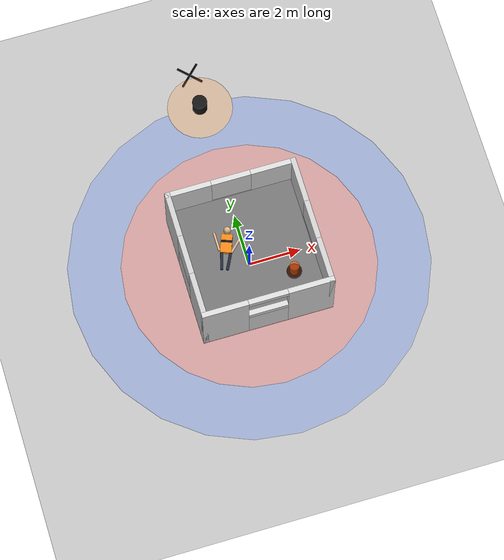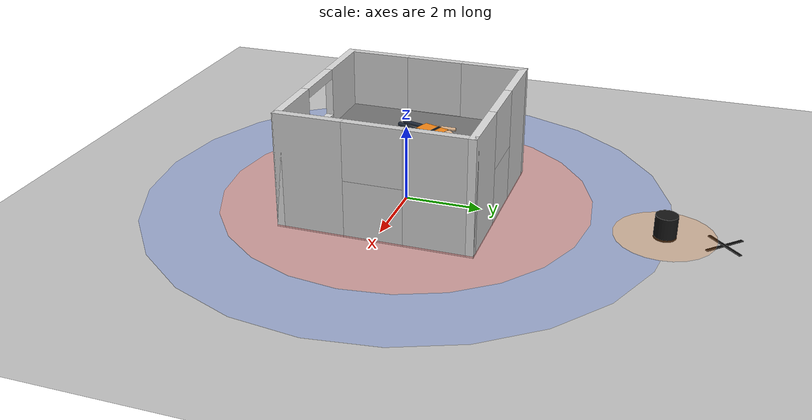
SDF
<?xml version="1.0" ?>
<sdf version="1.6">
  <world name="surveillance_building">

    <!-- ── Physics ─────────────────────────────────────────────── -->
    <physics name="default" default="true" type="ode">
      <max_step_size>0.002</max_step_size>
      <real_time_factor>1.0</real_time_factor>
      <real_time_update_rate>500</real_time_update_rate>
    </physics>

    <plugin
      filename="gz-sim-physics-system"
      name="gz::sim::systems::Physics">
    </plugin>

    <plugin
      filename="gz-sim-sensors-system"
      name="gz::sim::systems::Sensors">
    </plugin>

    <plugin
      filename="gz-sim-scene-broadcaster-system"
      name="gz::sim::systems::SceneBroadcaster">
    </plugin>

    <plugin
      filename="gz-sim-user-commands-system"
      name="gz::sim::systems::UserCommands">
    </plugin>

    <!-- ── Scene ──────────────────────────────────────────────── -->
    <scene>
      <ambient>0.6 0.6 0.6 1</ambient>
      <background>0.7 0.8 0.9 1</background>
      <shadows>true</shadows>
    </scene>

    <!-- ── Sun ────────────────────────────────────────────────── -->
    <light name="sun" type="directional">
      <cast_shadows>true</cast_shadows>
      <pose>0 0 10 0 0 0</pose>
      <diffuse>0.9 0.9 0.9 1</diffuse>
      <specular>0.1 0.1 0.1 1</specular>
      <direction>-0.5 0.1 -0.9</direction>
    </light>

    <!-- ── Ground Plane ───────────────────────────────────────── -->
    <model name="ground_plane">
      <static>true</static>
      <link name="link">
        <collision name="collision">
          <geometry>
            <plane>
              <normal>0 0 1</normal>
              <size>50 50</size>
            </plane>
          </geometry>
        </collision>
        <visual name="visual">
          <cast_shadows>false</cast_shadows>
          <geometry>
            <plane>
              <normal>0 0 1</normal>
              <size>50 50</size>
            </plane>
          </geometry>
          <material>
            <ambient>0.75 0.75 0.75 1</ambient>
            <diffuse>0.75 0.75 0.75 1</diffuse>
          </material>
        </visual>
      </link>
    </model>

    <model name="surveillance_building">
      <static>true</static>
      <pose>0 0 0 0 0 0</pose>

      <link name="floor">
        <pose>0 0 1.45 0 0 0</pose>
        <collision name="c">
          <geometry><box><size>4.55 4.55 0.1</size></box></geometry>
        </collision>
        <visual name="v">
          <geometry><box><size>4.55 4.55 0.1</size></box></geometry>
          <material>
            <ambient>0.45 0.45 0.45 1</ambient>
            <diffuse>0.45 0.45 0.45 1</diffuse>
          </material>
        </visual>
      </link>

      <!-- ══ NORTH WALL  (y = +2.4, outer face at y = +2.5) ══
           Runs along X-axis.
           ─────────────────────────────────────────────────────── -->

      <!-- Left column  x ∈ [−2.50, −0.75]  full height -->
      <link name="n_col_l">
        <pose>-1.625 2.4 1.5 0 0 0</pose>
        <collision name="c"><geometry><box><size>1.75 0.2 3.0</size></box></geometry></collision>
        <visual name="v">
          <geometry><box><size>1.75 0.2 3.0</size></box></geometry>
          <material><ambient>0.85 0.85 0.85 1</ambient><diffuse>0.85 0.85 0.85 1</diffuse></material>
        </visual>
      </link>

      <!-- Right column  x ∈ [+0.75, +2.50]  full height -->
      <link name="n_col_r">
        <pose>1.625 2.4 1.5 0 0 0</pose>
        <collision name="c"><geometry><box><size>1.75 0.2 3.0</size></box></geometry></collision>
        <visual name="v">
          <geometry><box><size>1.75 0.2 3.0</size></box></geometry>
          <material><ambient>0.85 0.85 0.85 1</ambient><diffuse>0.85 0.85 0.85 1</diffuse></material>
        </visual>
      </link>

      <!-- Solid lower wall and blocked upper window centre panel -->
      <link name="n_bot">
        <pose>0 2.4 0.75 0 0 0</pose>
        <collision name="c"><geometry><box><size>1.5 0.2 1.5</size></box></geometry></collision>
        <visual name="v">
          <geometry><box><size>1.5 0.2 1.5</size></box></geometry>
          <material><ambient>0.85 0.85 0.85 1</ambient><diffuse>0.85 0.85 0.85 1</diffuse></material>
        </visual>
      </link>

      <link name="n_top">
        <pose>0 2.4 2.25 0 0 0</pose>
        <collision name="c"><geometry><box><size>1.5 0.2 1.5</size></box></geometry></collision>
        <visual name="v">
          <geometry><box><size>1.5 0.2 1.5</size></box></geometry>
          <material><ambient>0.85 0.85 0.85 1</ambient><diffuse>0.85 0.85 0.85 1</diffuse></material>
        </visual>
      </link>

      <!-- ══ SOUTH WALL  (y = −2.4, outer face at y = −2.5) ══ -->

      <link name="s_col_l">
        <pose>-1.625 -2.4 1.5 0 0 0</pose>
        <collision name="c"><geometry><box><size>1.75 0.2 3.0</size></box></geometry></collision>
        <visual name="v">
          <geometry><box><size>1.75 0.2 3.0</size></box></geometry>
          <material><ambient>0.85 0.85 0.85 1</ambient><diffuse>0.85 0.85 0.85 1</diffuse></material>
        </visual>
      </link>

      <link name="s_col_r">
        <pose>1.625 -2.4 1.5 0 0 0</pose>
        <collision name="c"><geometry><box><size>1.75 0.2 3.0</size></box></geometry></collision>
        <visual name="v">
          <geometry><box><size>1.75 0.2 3.0</size></box></geometry>
          <material><ambient>0.85 0.85 0.85 1</ambient><diffuse>0.85 0.85 0.85 1</diffuse></material>
        </visual>
      </link>

      <link name="s_bot">
        <pose>0 -2.4 0.75 0 0 0</pose>
        <collision name="c"><geometry><box><size>1.5 0.2 1.5</size></box></geometry></collision>
        <visual name="v">
          <geometry><box><size>1.5 0.2 1.5</size></box></geometry>
          <material><ambient>0.85 0.85 0.85 1</ambient><diffuse>0.85 0.85 0.85 1</diffuse></material>
        </visual>
      </link>

      <link name="s_upper_sill">
        <pose>0 -2.4 1.625 0 0 0</pose>
        <collision name="c"><geometry><box><size>1.5 0.2 0.25</size></box></geometry></collision>
        <visual name="v">
          <geometry><box><size>1.5 0.2 0.25</size></box></geometry>
          <material><ambient>0.85 0.85 0.85 1</ambient><diffuse>0.85 0.85 0.85 1</diffuse></material>
        </visual>
      </link>

      <link name="s_top">
        <pose>0 -2.4 2.875 0 0 0</pose>
        <collision name="c"><geometry><box><size>1.5 0.2 0.25</size></box></geometry></collision>
        <visual name="v">
          <geometry><box><size>1.5 0.2 0.25</size></box></geometry>
          <material><ambient>0.85 0.85 0.85 1</ambient><diffuse>0.85 0.85 0.85 1</diffuse></material>
        </visual>
      </link>

      <!-- ══ EAST WALL  (x = +2.4, outer face at x = +2.5) ══
           Runs along Y-axis.  Size swaps x↔y vs N/S walls.
           ─────────────────────────────────────────────────────── -->

      <link name="e_col_l">
        <pose>2.4 -1.625 1.5 0 0 0</pose>
        <collision name="c"><geometry><box><size>0.2 1.75 3.0</size></box></geometry></collision>
        <visual name="v">
          <geometry><box><size>0.2 1.75 3.0</size></box></geometry>
          <material><ambient>0.80 0.80 0.80 1</ambient><diffuse>0.80 0.80 0.80 1</diffuse></material>
        </visual>
      </link>

      <link name="e_col_r">
        <pose>2.4 1.625 1.5 0 0 0</pose>
        <collision name="c"><geometry><box><size>0.2 1.75 3.0</size></box></geometry></collision>
        <visual name="v">
          <geometry><box><size>0.2 1.75 3.0</size></box></geometry>
          <material><ambient>0.80 0.80 0.80 1</ambient><diffuse>0.80 0.80 0.80 1</diffuse></material>
        </visual>
      </link>

      <link name="e_bot">
        <pose>2.4 0 0.75 0 0 0</pose>
        <collision name="c"><geometry><box><size>0.2 1.5 1.5</size></box></geometry></collision>
        <visual name="v">
          <geometry><box><size>0.2 1.5 1.5</size></box></geometry>
          <material><ambient>0.80 0.80 0.80 1</ambient><diffuse>0.80 0.80 0.80 1</diffuse></material>
        </visual>
      </link>

      <link name="e_top">
        <pose>2.4 0 2.25 0 0 0</pose>
        <collision name="c"><geometry><box><size>0.2 1.5 1.5</size></box></geometry></collision>
        <visual name="v">
          <geometry><box><size>0.2 1.5 1.5</size></box></geometry>
          <material><ambient>0.80 0.80 0.80 1</ambient><diffuse>0.80 0.80 0.80 1</diffuse></material>
        </visual>
      </link>

      <!-- ══ WEST WALL  (x = −2.4, outer face at x = −2.5) ══ -->

      <link name="w_col_l">
        <pose>-2.4 -1.625 1.5 0 0 0</pose>
        <collision name="c"><geometry><box><size>0.2 1.75 3.0</size></box></geometry></collision>
        <visual name="v">
          <geometry><box><size>0.2 1.75 3.0</size></box></geometry>
          <material><ambient>0.80 0.80 0.80 1</ambient><diffuse>0.80 0.80 0.80 1</diffuse></material>
        </visual>
      </link>

      <link name="w_col_r">
        <pose>-2.4 1.625 1.5 0 0 0</pose>
        <collision name="c"><geometry><box><size>0.2 1.75 3.0</size></box></geometry></collision>
        <visual name="v">
          <geometry><box><size>0.2 1.75 3.0</size></box></geometry>
          <material><ambient>0.80 0.80 0.80 1</ambient><diffuse>0.80 0.80 0.80 1</diffuse></material>
        </visual>
      </link>

      <link name="w_bot">
        <pose>-2.4 0 0.75 0 0 0</pose>
        <collision name="c"><geometry><box><size>0.2 1.5 1.5</size></box></geometry></collision>
        <visual name="v">
          <geometry><box><size>0.2 1.5 1.5</size></box></geometry>
          <material><ambient>0.80 0.80 0.80 1</ambient><diffuse>0.80 0.80 0.80 1</diffuse></material>
        </visual>
      </link>

      <link name="w_top">
        <pose>-2.4 0 2.25 0 0 0</pose>
        <collision name="c"><geometry><box><size>0.2 1.5 1.5</size></box></geometry></collision>
        <visual name="v">
          <geometry><box><size>0.2 1.5 1.5</size></box></geometry>
          <material><ambient>0.80 0.80 0.80 1</ambient><diffuse>0.80 0.80 0.80 1</diffuse></material>
        </visual>
      </link>

    </model>
    <!-- end surveillance_building -->

    <model name="ergodic_area_visual">
      <static>true</static>
      <pose>0 0 0.012 0 0 0</pose>
      <link name="visual_only">
        <visual name="coverage_disk">
          <cast_shadows>false</cast_shadows>
          <geometry>
            <cylinder>
              <radius>6.8</radius>
              <length>0.015</length>
            </cylinder>
          </geometry>
          <material>
            <ambient>0.02 0.30 1.00 0.12</ambient>
            <diffuse>0.02 0.30 1.00 0.12</diffuse>
            <emissive>0.00 0.06 0.18 0.08</emissive>
          </material>
          <transparency>0.88</transparency>
        </visual>
      </link>
    </model>

    <!-- Small path obstacle with its own local CBF circle. -->
    <model name="path_obstacle">
      <static>true</static>
      <pose>0 6.6 0.30 0 0 0</pose>
      <link name="body">
        <collision name="c">
          <geometry>
            <cylinder>
              <radius>0.28</radius>
              <length>0.60</length>
            </cylinder>
          </geometry>
        </collision>
        <visual name="v">
          <geometry>
            <cylinder>
              <radius>0.28</radius>
              <length>0.60</length>
            </cylinder>
          </geometry>
          <material>
            <ambient>0.08 0.08 0.08 1</ambient>
            <diffuse>0.08 0.08 0.08 1</diffuse>
          </material>
        </visual>
      </link>
    </model>

    <model name="path_obstacle_cbf_visual">
      <static>true</static>
      <pose>0 6.6 0.04 0 0 0</pose>
      <link name="visual_only">
        <visual name="obstacle_cbf_disk">
          <cast_shadows>false</cast_shadows>
          <geometry>
            <cylinder>
              <radius>1.25</radius>
              <length>0.02</length>
            </cylinder>
          </geometry>
          <material>
            <ambient>1.00 0.45 0.00 0.18</ambient>
            <diffuse>1.00 0.45 0.00 0.18</diffuse>
            <emissive>0.20 0.06 0.00 0.10</emissive>
          </material>
          <transparency>0.82</transparency>
        </visual>
      </link>
    </model>

    <!-- Default drone home/start marker at launch pose (x=0, y=8). -->
    <model name="home_start_marker">
      <static>true</static>
      <pose>0 8 0.018 0 0 0</pose>
      <link name="x_marker">
        <visual name="slash_a">
          <cast_shadows>false</cast_shadows>
          <pose>0 0 0 0 0 0.7854</pose>
          <geometry><box><size>1.1 0.08 0.025</size></box></geometry>
          <material>
            <ambient>0.0 0.0 0.0 1</ambient>
            <diffuse>0.0 0.0 0.0 1</diffuse>
          </material>
        </visual>
        <visual name="slash_b">
          <cast_shadows>false</cast_shadows>
          <pose>0 0 0 0 0 -0.7854</pose>
          <geometry><box><size>1.1 0.08 0.025</size></box></geometry>
          <material>
            <ambient>0.0 0.0 0.0 1</ambient>
            <diffuse>0.0 0.0 0.0 1</diffuse>
          </material>
        </visual>
      </link>
    </model>

    <model name="cbf_field_visual">
      <static>true</static>
      <pose>0 0 0.03 0 0 0</pose>
      <link name="visual_only">
        <visual name="repulsion_disk">
          <cast_shadows>false</cast_shadows>
          <geometry>
            <cylinder>
              <radius>4.8</radius>
              <length>0.025</length>
            </cylinder>
          </geometry>
          <material>
            <ambient>1.00 0.06 0.02 0.16</ambient>
            <diffuse>1.00 0.06 0.02 0.16</diffuse>
            <emissive>0.20 0.01 0.00 0.10</emissive>
          </material>
          <transparency>0.84</transparency>
        </visual>
      </link>
    </model>

    <model name="rescue_mannequin">
      <static>true</static>
      <pose>-0.75 0.45 1.5 0 0 -0.35</pose>

      <link name="body">
        <pose>0 0 0 0 0 0</pose>

        <visual name="torso">
          <pose>0 0 0.13 0 0 0</pose>
          <geometry><box><size>0.42 0.72 0.16</size></box></geometry>
          <material>
            <ambient>0.95 0.52 0.08 1</ambient>
            <diffuse>0.95 0.52 0.08 1</diffuse>
            <specular>0.12 0.12 0.12 1</specular>
          </material>
        </visual>
        <collision name="torso_c">
          <pose>0 0 0.13 0 0 0</pose>
          <geometry><box><size>0.42 0.72 0.16</size></box></geometry>
        </collision>

        <visual name="chest_marker">
          <pose>0 0.08 0.215 0 0 0</pose>
          <geometry><box><size>0.44 0.09 0.012</size></box></geometry>
          <material>
            <ambient>0.05 0.05 0.05 1</ambient>
            <diffuse>0.05 0.05 0.05 1</diffuse>
          </material>
        </visual>

        <visual name="head">
          <pose>0 0.52 0.15 0 0 0</pose>
          <geometry><sphere><radius>0.14</radius></sphere></geometry>
          <material>
            <ambient>0.86 0.70 0.55 1</ambient>
            <diffuse>0.86 0.70 0.55 1</diffuse>
          </material>
        </visual>
        <collision name="head_c">
          <pose>0 0.52 0.15 0 0 0</pose>
          <geometry><sphere><radius>0.14</radius></sphere></geometry>
        </collision>

        <visual name="left_arm">
          <pose>-0.36 0.06 0.13 1.5708 0 0.35</pose>
          <geometry><cylinder><radius>0.045</radius><length>0.72</length></cylinder></geometry>
          <material><ambient>0.86 0.70 0.55 1</ambient><diffuse>0.86 0.70 0.55 1</diffuse></material>
        </visual>
        <visual name="right_arm">
          <pose>0.36 -0.02 0.13 1.5708 0 -0.45</pose>
          <geometry><cylinder><radius>0.045</radius><length>0.72</length></cylinder></geometry>
          <material><ambient>0.86 0.70 0.55 1</ambient><diffuse>0.86 0.70 0.55 1</diffuse></material>
        </visual>

        <visual name="left_leg">
          <pose>-0.13 -0.62 0.12 1.5708 0 0.08</pose>
          <geometry><cylinder><radius>0.055</radius><length>0.78</length></cylinder></geometry>
          <material><ambient>0.12 0.16 0.22 1</ambient><diffuse>0.12 0.16 0.22 1</diffuse></material>
        </visual>
        <visual name="right_leg">
          <pose>0.15 -0.62 0.12 1.5708 0 -0.12</pose>
          <geometry><cylinder><radius>0.055</radius><length>0.78</length></cylinder></geometry>
          <material><ambient>0.12 0.16 0.22 1</ambient><diffuse>0.12 0.16 0.22 1</diffuse></material>
        </visual>
      </link>
    </model>

    <model name="fire_smoke_source">
      <static>true</static>
      <pose>1.35 -1.25 1.5 0 0 0</pose>

      <link name="source">
        <visual name="ember_base">
          <pose>0 0 0.035 0 0 0</pose>
          <geometry><cylinder><radius>0.28</radius><length>0.07</length></cylinder></geometry>
          <material>
            <ambient>0.18 0.06 0.02 1</ambient>
            <diffuse>0.18 0.06 0.02 1</diffuse>
            <emissive>0.85 0.22 0.03 1</emissive>
          </material>
        </visual>

        <visual name="flame_core">
          <pose>0 0 0.36 0 0 0</pose>
          <geometry><cylinder><radius>0.18</radius><length>0.55</length></cylinder></geometry>
          <material>
            <ambient>1.0 0.35 0.02 0.55</ambient>
            <diffuse>1.0 0.35 0.02 0.55</diffuse>
            <emissive>1.0 0.24 0.0 1</emissive>
          </material>
        </visual>

        <particle_emitter name="flames" type="box">
          <pose>0 0 0.18 0 0 0</pose>
          <emitting>true</emitting>
          <duration>0</duration>
          <lifetime>0.55</lifetime>
          <rate>55</rate>
          <size>0.20 0.20 0.06</size>
          <particle_size>0.10 0.10 0.10</particle_size>
          <scale_rate>0.35</scale_rate>
          <min_velocity>0.7</min_velocity>
          <max_velocity>1.2</max_velocity>
          <color_start>1.0 0.42 0.02 0.95</color_start>
          <color_end>0.70 0.03 0.0 0.0</color_end>
        </particle_emitter>

        <particle_emitter name="smoke" type="box">
          <pose>0 0 0.65 0 0 0</pose>
          <emitting>true</emitting>
          <duration>0</duration>
          <lifetime>2.6</lifetime>
          <rate>18</rate>
          <size>0.26 0.26 0.10</size>
          <particle_size>0.14 0.14 0.14</particle_size>
          <scale_rate>0.55</scale_rate>
          <min_velocity>0.18</min_velocity>
          <max_velocity>0.55</max_velocity>
          <color_start>0.16 0.16 0.16 0.32</color_start>
          <color_end>0.42 0.42 0.42 0.0</color_end>
        </particle_emitter>

        <light name="fire_glow" type="point">
          <pose>0 0 0.65 0 0 0</pose>
          <diffuse>1.0 0.35 0.05 1</diffuse>
          <specular>0.45 0.12 0.02 1</specular>
          <attenuation>
            <range>4.0</range>
            <constant>0.4</constant>
            <linear>0.55</linear>
            <quadratic>0.25</quadratic>
          </attenuation>
          <cast_shadows>false</cast_shadows>
        </light>
      </link>
    </model>

  </world>
</sdf>
